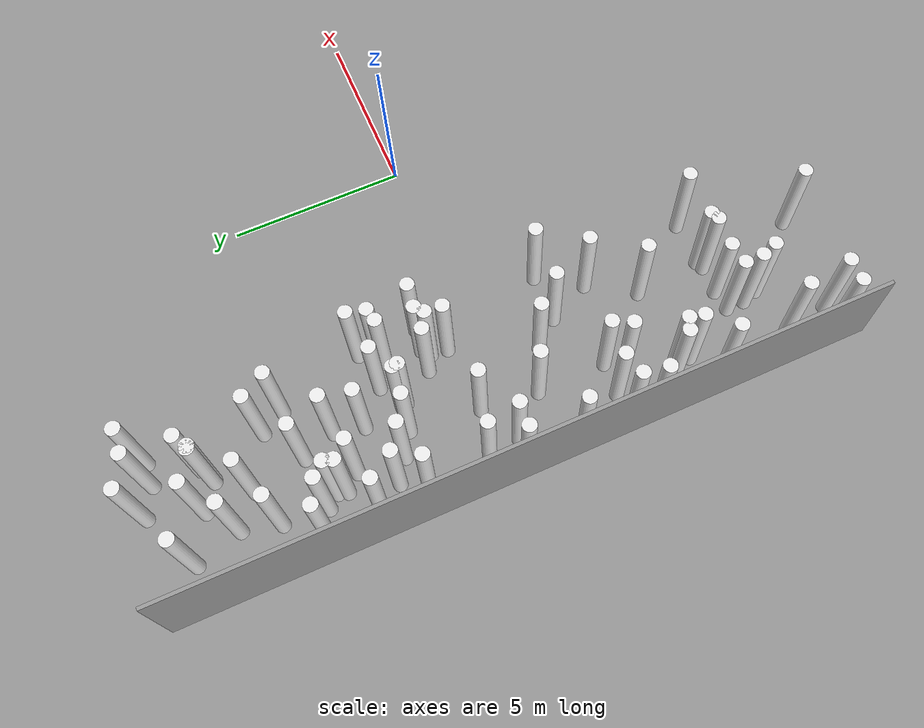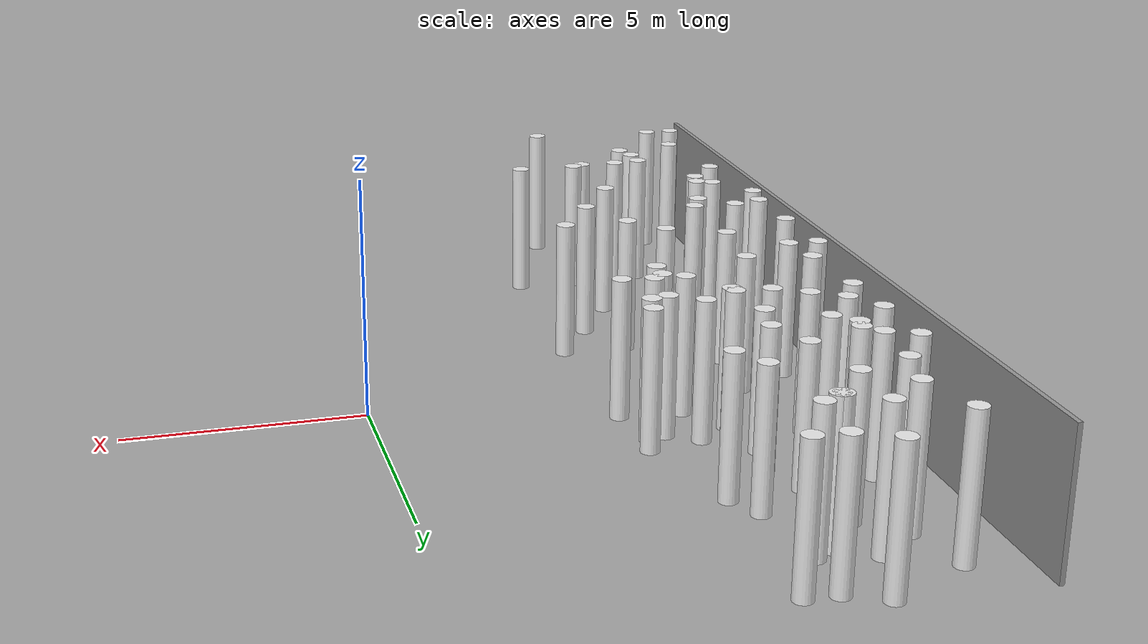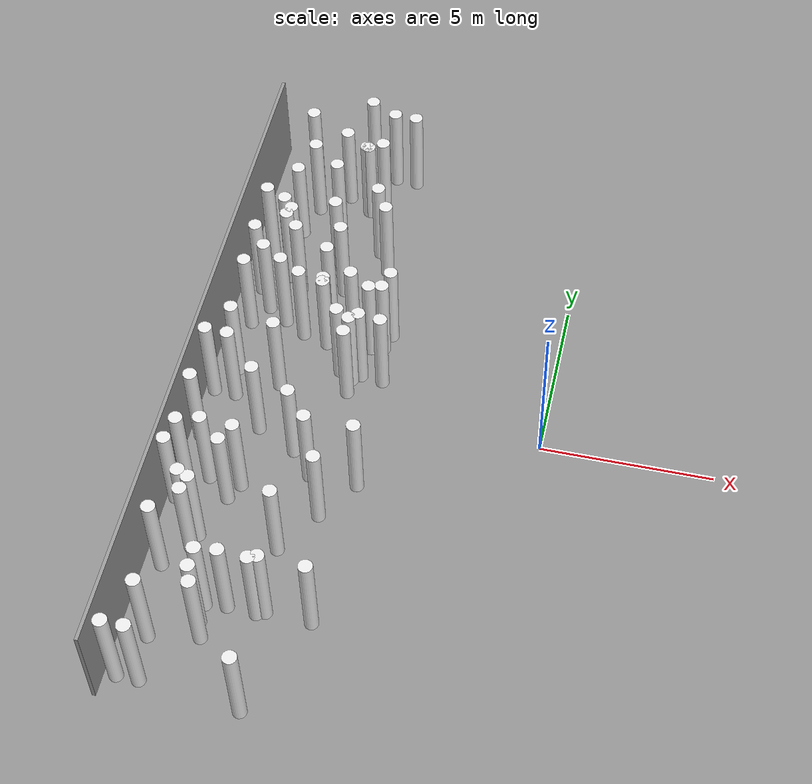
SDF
<sdf version="1.5">
 <world name="default">
  <include><uri>model://sun</uri></include>
  <model name="box_4">
   <pose>-10.05 -0.04999999999999982 1.5  0 0 0</pose>
   <static>true</static>
   <link name="link">
    <collision name="collision">
     <geometry><box><size>0.09999999999999964 20.1 3.0</size></box></geometry>
    </collision>
    <visual name="visual">
     <geometry><box><size>0.09999999999999964 20.1 3.0</size></box></geometry>
     <material>
      <script><name>Gazebo/Grey</name><uri>file://media/materials/scripts/gazebo.material</uri></script>
     </material>
    </visual>
   </link>
  </model>
  <model name="cylinder_2">
   <pose>-8.91809387741 3.40740717067 1.5  0 0 0</pose>
   <static>true</static>
   <link name="link">
    <collision name="collision">
     <geometry><cylinder><radius>0.2</radius><length>3.0</length></cylinder></geometry>
    </collision>
    <visual name="visual">
     <geometry><cylinder><radius>0.2</radius><length>3.0</length></cylinder></geometry>
     <material>
      <script><name>Gazebo/White</name><uri>file://media/materials/scripts/gazebo.material</uri></script>
     </material>
    </visual>
   </link>
  </model>
  <model name="cylinder_4">
   <pose>-8.85773805694 -5.24153846135 1.5  0 0 0</pose>
   <static>true</static>
   <link name="link">
    <collision name="collision">
     <geometry><cylinder><radius>0.2</radius><length>3.0</length></cylinder></geometry>
    </collision>
    <visual name="visual">
     <geometry><cylinder><radius>0.2</radius><length>3.0</length></cylinder></geometry>
     <material>
      <script><name>Gazebo/White</name><uri>file://media/materials/scripts/gazebo.material</uri></script>
     </material>
    </visual>
   </link>
  </model>
  <model name="cylinder_5">
   <pose>-6.40461813006 8.08408559015 1.5  0 0 0</pose>
   <static>true</static>
   <link name="link">
    <collision name="collision">
     <geometry><cylinder><radius>0.2</radius><length>3.0</length></cylinder></geometry>
    </collision>
    <visual name="visual">
     <geometry><cylinder><radius>0.2</radius><length>3.0</length></cylinder></geometry>
     <material>
      <script><name>Gazebo/White</name><uri>file://media/materials/scripts/gazebo.material</uri></script>
     </material>
    </visual>
   </link>
  </model>
  <model name="cylinder_7">
   <pose>-9.35590509319 4.09018197456 1.5  0 0 0</pose>
   <static>true</static>
   <link name="link">
    <collision name="collision">
     <geometry><cylinder><radius>0.2</radius><length>3.0</length></cylinder></geometry>
    </collision>
    <visual name="visual">
     <geometry><cylinder><radius>0.2</radius><length>3.0</length></cylinder></geometry>
     <material>
      <script><name>Gazebo/White</name><uri>file://media/materials/scripts/gazebo.material</uri></script>
     </material>
    </visual>
   </link>
  </model>
  <model name="cylinder_10">
   <pose>-6.18407992831 2.91278318849 1.5  0 0 0</pose>
   <static>true</static>
   <link name="link">
    <collision name="collision">
     <geometry><cylinder><radius>0.2</radius><length>3.0</length></cylinder></geometry>
    </collision>
    <visual name="visual">
     <geometry><cylinder><radius>0.2</radius><length>3.0</length></cylinder></geometry>
     <material>
      <script><name>Gazebo/White</name><uri>file://media/materials/scripts/gazebo.material</uri></script>
     </material>
    </visual>
   </link>
  </model>
  <model name="cylinder_12">
   <pose>-7.07911922613 3.68708130066 1.5  0 0 0</pose>
   <static>true</static>
   <link name="link">
    <collision name="collision">
     <geometry><cylinder><radius>0.2</radius><length>3.0</length></cylinder></geometry>
    </collision>
    <visual name="visual">
     <geometry><cylinder><radius>0.2</radius><length>3.0</length></cylinder></geometry>
     <material>
      <script><name>Gazebo/White</name><uri>file://media/materials/scripts/gazebo.material</uri></script>
     </material>
    </visual>
   </link>
  </model>
  <model name="cylinder_16">
   <pose>-8.48771588368 4.98800820012 1.5  0 0 0</pose>
   <static>true</static>
   <link name="link">
    <collision name="collision">
     <geometry><cylinder><radius>0.2</radius><length>3.0</length></cylinder></geometry>
    </collision>
    <visual name="visual">
     <geometry><cylinder><radius>0.2</radius><length>3.0</length></cylinder></geometry>
     <material>
      <script><name>Gazebo/White</name><uri>file://media/materials/scripts/gazebo.material</uri></script>
     </material>
    </visual>
   </link>
  </model>
  <model name="cylinder_17">
   <pose>-9.06560502916 0.0428111366953 1.5  0 0 0</pose>
   <static>true</static>
   <link name="link">
    <collision name="collision">
     <geometry><cylinder><radius>0.2</radius><length>3.0</length></cylinder></geometry>
    </collision>
    <visual name="visual">
     <geometry><cylinder><radius>0.2</radius><length>3.0</length></cylinder></geometry>
     <material>
      <script><name>Gazebo/White</name><uri>file://media/materials/scripts/gazebo.material</uri></script>
     </material>
    </visual>
   </link>
  </model>
  <model name="cylinder_21">
   <pose>-9.08391895157 -4.67856192585 1.5  0 0 0</pose>
   <static>true</static>
   <link name="link">
    <collision name="collision">
     <geometry><cylinder><radius>0.2</radius><length>3.0</length></cylinder></geometry>
    </collision>
    <visual name="visual">
     <geometry><cylinder><radius>0.2</radius><length>3.0</length></cylinder></geometry>
     <material>
      <script><name>Gazebo/White</name><uri>file://media/materials/scripts/gazebo.material</uri></script>
     </material>
    </visual>
   </link>
  </model>
  <model name="cylinder_23">
   <pose>-8.05006033049 -2.99132176691 1.5  0 0 0</pose>
   <static>true</static>
   <link name="link">
    <collision name="collision">
     <geometry><cylinder><radius>0.2</radius><length>3.0</length></cylinder></geometry>
    </collision>
    <visual name="visual">
     <geometry><cylinder><radius>0.2</radius><length>3.0</length></cylinder></geometry>
     <material>
      <script><name>Gazebo/White</name><uri>file://media/materials/scripts/gazebo.material</uri></script>
     </material>
    </visual>
   </link>
  </model>
  <model name="cylinder_30">
   <pose>-8.98854296439 -2.91839689633 1.5  0 0 0</pose>
   <static>true</static>
   <link name="link">
    <collision name="collision">
     <geometry><cylinder><radius>0.2</radius><length>3.0</length></cylinder></geometry>
    </collision>
    <visual name="visual">
     <geometry><cylinder><radius>0.2</radius><length>3.0</length></cylinder></geometry>
     <material>
      <script><name>Gazebo/White</name><uri>file://media/materials/scripts/gazebo.material</uri></script>
     </material>
    </visual>
   </link>
  </model>
  <model name="cylinder_37">
   <pose>-7.96819840306 -6.91413932885 1.5  0 0 0</pose>
   <static>true</static>
   <link name="link">
    <collision name="collision">
     <geometry><cylinder><radius>0.2</radius><length>3.0</length></cylinder></geometry>
    </collision>
    <visual name="visual">
     <geometry><cylinder><radius>0.2</radius><length>3.0</length></cylinder></geometry>
     <material>
      <script><name>Gazebo/White</name><uri>file://media/materials/scripts/gazebo.material</uri></script>
     </material>
    </visual>
   </link>
  </model>
  <model name="cylinder_43">
   <pose>-6.79873943102 7.83938631427 1.5  0 0 0</pose>
   <static>true</static>
   <link name="link">
    <collision name="collision">
     <geometry><cylinder><radius>0.2</radius><length>3.0</length></cylinder></geometry>
    </collision>
    <visual name="visual">
     <geometry><cylinder><radius>0.2</radius><length>3.0</length></cylinder></geometry>
     <material>
      <script><name>Gazebo/White</name><uri>file://media/materials/scripts/gazebo.material</uri></script>
     </material>
    </visual>
   </link>
  </model>
  <model name="cylinder_44">
   <pose>-8.29941449807 3.00940650877 1.5  0 0 0</pose>
   <static>true</static>
   <link name="link">
    <collision name="collision">
     <geometry><cylinder><radius>0.2</radius><length>3.0</length></cylinder></geometry>
    </collision>
    <visual name="visual">
     <geometry><cylinder><radius>0.2</radius><length>3.0</length></cylinder></geometry>
     <material>
      <script><name>Gazebo/White</name><uri>file://media/materials/scripts/gazebo.material</uri></script>
     </material>
    </visual>
   </link>
  </model>
  <model name="cylinder_45">
   <pose>-9.32123799414 2.73283957312 1.5  0 0 0</pose>
   <static>true</static>
   <link name="link">
    <collision name="collision">
     <geometry><cylinder><radius>0.2</radius><length>3.0</length></cylinder></geometry>
    </collision>
    <visual name="visual">
     <geometry><cylinder><radius>0.2</radius><length>3.0</length></cylinder></geometry>
     <material>
      <script><name>Gazebo/White</name><uri>file://media/materials/scripts/gazebo.material</uri></script>
     </material>
    </visual>
   </link>
  </model>
  <model name="cylinder_47">
   <pose>-9.66109366104 -1.57732321205 1.5  0 0 0</pose>
   <static>true</static>
   <link name="link">
    <collision name="collision">
     <geometry><cylinder><radius>0.2</radius><length>3.0</length></cylinder></geometry>
    </collision>
    <visual name="visual">
     <geometry><cylinder><radius>0.2</radius><length>3.0</length></cylinder></geometry>
     <material>
      <script><name>Gazebo/White</name><uri>file://media/materials/scripts/gazebo.material</uri></script>
     </material>
    </visual>
   </link>
  </model>
  <model name="cylinder_49">
   <pose>-6.8581710338 7.85588094173 1.5  0 0 0</pose>
   <static>true</static>
   <link name="link">
    <collision name="collision">
     <geometry><cylinder><radius>0.2</radius><length>3.0</length></cylinder></geometry>
    </collision>
    <visual name="visual">
     <geometry><cylinder><radius>0.2</radius><length>3.0</length></cylinder></geometry>
     <material>
      <script><name>Gazebo/White</name><uri>file://media/materials/scripts/gazebo.material</uri></script>
     </material>
    </visual>
   </link>
  </model>
  <model name="cylinder_50">
   <pose>-6.19443365025 -9.76611396982 1.5  0 0 0</pose>
   <static>true</static>
   <link name="link">
    <collision name="collision">
     <geometry><cylinder><radius>0.2</radius><length>3.0</length></cylinder></geometry>
    </collision>
    <visual name="visual">
     <geometry><cylinder><radius>0.2</radius><length>3.0</length></cylinder></geometry>
     <material>
      <script><name>Gazebo/White</name><uri>file://media/materials/scripts/gazebo.material</uri></script>
     </material>
    </visual>
   </link>
  </model>
  <model name="cylinder_56">
   <pose>-6.26087689021 1.49954999286 1.5  0 0 0</pose>
   <static>true</static>
   <link name="link">
    <collision name="collision">
     <geometry><cylinder><radius>0.2</radius><length>3.0</length></cylinder></geometry>
    </collision>
    <visual name="visual">
     <geometry><cylinder><radius>0.2</radius><length>3.0</length></cylinder></geometry>
     <material>
      <script><name>Gazebo/White</name><uri>file://media/materials/scripts/gazebo.material</uri></script>
     </material>
    </visual>
   </link>
  </model>
  <model name="cylinder_57">
   <pose>-5.61491477612 1.46301873385 1.5  0 0 0</pose>
   <static>true</static>
   <link name="link">
    <collision name="collision">
     <geometry><cylinder><radius>0.2</radius><length>3.0</length></cylinder></geometry>
    </collision>
    <visual name="visual">
     <geometry><cylinder><radius>0.2</radius><length>3.0</length></cylinder></geometry>
     <material>
      <script><name>Gazebo/White</name><uri>file://media/materials/scripts/gazebo.material</uri></script>
     </material>
    </visual>
   </link>
  </model>
  <model name="cylinder_63">
   <pose>-6.87695886852 4.52264266228 1.5  0 0 0</pose>
   <static>true</static>
   <link name="link">
    <collision name="collision">
     <geometry><cylinder><radius>0.2</radius><length>3.0</length></cylinder></geometry>
    </collision>
    <visual name="visual">
     <geometry><cylinder><radius>0.2</radius><length>3.0</length></cylinder></geometry>
     <material>
      <script><name>Gazebo/White</name><uri>file://media/materials/scripts/gazebo.material</uri></script>
     </material>
    </visual>
   </link>
  </model>
  <model name="cylinder_64">
   <pose>-7.25736357598 5.46162269004 1.5  0 0 0</pose>
   <static>true</static>
   <link name="link">
    <collision name="collision">
     <geometry><cylinder><radius>0.2</radius><length>3.0</length></cylinder></geometry>
    </collision>
    <visual name="visual">
     <geometry><cylinder><radius>0.2</radius><length>3.0</length></cylinder></geometry>
     <material>
      <script><name>Gazebo/White</name><uri>file://media/materials/scripts/gazebo.material</uri></script>
     </material>
    </visual>
   </link>
  </model>
  <model name="cylinder_70">
   <pose>-6.30739602169 9.37611433007 1.5  0 0 0</pose>
   <static>true</static>
   <link name="link">
    <collision name="collision">
     <geometry><cylinder><radius>0.2</radius><length>3.0</length></cylinder></geometry>
    </collision>
    <visual name="visual">
     <geometry><cylinder><radius>0.2</radius><length>3.0</length></cylinder></geometry>
     <material>
      <script><name>Gazebo/White</name><uri>file://media/materials/scripts/gazebo.material</uri></script>
     </material>
    </visual>
   </link>
  </model>
  <model name="cylinder_83">
   <pose>-9.19539128012 -8.15250630537 1.5  0 0 0</pose>
   <static>true</static>
   <link name="link">
    <collision name="collision">
     <geometry><cylinder><radius>0.2</radius><length>3.0</length></cylinder></geometry>
    </collision>
    <visual name="visual">
     <geometry><cylinder><radius>0.2</radius><length>3.0</length></cylinder></geometry>
     <material>
      <script><name>Gazebo/White</name><uri>file://media/materials/scripts/gazebo.material</uri></script>
     </material>
    </visual>
   </link>
  </model>
  <model name="cylinder_85">
   <pose>-5.01222941314 -6.86212247309 1.5  0 0 0</pose>
   <static>true</static>
   <link name="link">
    <collision name="collision">
     <geometry><cylinder><radius>0.2</radius><length>3.0</length></cylinder></geometry>
    </collision>
    <visual name="visual">
     <geometry><cylinder><radius>0.2</radius><length>3.0</length></cylinder></geometry>
     <material>
      <script><name>Gazebo/White</name><uri>file://media/materials/scripts/gazebo.material</uri></script>
     </material>
    </visual>
   </link>
  </model>
  <model name="cylinder_88">
   <pose>-5.84831882596 1.26511164725 1.5  0 0 0</pose>
   <static>true</static>
   <link name="link">
    <collision name="collision">
     <geometry><cylinder><radius>0.2</radius><length>3.0</length></cylinder></geometry>
    </collision>
    <visual name="visual">
     <geometry><cylinder><radius>0.2</radius><length>3.0</length></cylinder></geometry>
     <material>
      <script><name>Gazebo/White</name><uri>file://media/materials/scripts/gazebo.material</uri></script>
     </material>
    </visual>
   </link>
  </model>
  <model name="cylinder_89">
   <pose>-6.88361470292 -1.55944134841 1.5  0 0 0</pose>
   <static>true</static>
   <link name="link">
    <collision name="collision">
     <geometry><cylinder><radius>0.2</radius><length>3.0</length></cylinder></geometry>
    </collision>
    <visual name="visual">
     <geometry><cylinder><radius>0.2</radius><length>3.0</length></cylinder></geometry>
     <material>
      <script><name>Gazebo/White</name><uri>file://media/materials/scripts/gazebo.material</uri></script>
     </material>
    </visual>
   </link>
  </model>
  <model name="cylinder_90">
   <pose>-8.56850200641 4.72829096182 1.5  0 0 0</pose>
   <static>true</static>
   <link name="link">
    <collision name="collision">
     <geometry><cylinder><radius>0.2</radius><length>3.0</length></cylinder></geometry>
    </collision>
    <visual name="visual">
     <geometry><cylinder><radius>0.2</radius><length>3.0</length></cylinder></geometry>
     <material>
      <script><name>Gazebo/White</name><uri>file://media/materials/scripts/gazebo.material</uri></script>
     </material>
    </visual>
   </link>
  </model>
  <model name="cylinder_92">
   <pose>-6.24467097843 -2.28933484051 1.5  0 0 0</pose>
   <static>true</static>
   <link name="link">
    <collision name="collision">
     <geometry><cylinder><radius>0.2</radius><length>3.0</length></cylinder></geometry>
    </collision>
    <visual name="visual">
     <geometry><cylinder><radius>0.2</radius><length>3.0</length></cylinder></geometry>
     <material>
      <script><name>Gazebo/White</name><uri>file://media/materials/scripts/gazebo.material</uri></script>
     </material>
    </visual>
   </link>
  </model>
  <model name="cylinder_93">
   <pose>-7.66136563109 2.6277047593 1.5  0 0 0</pose>
   <static>true</static>
   <link name="link">
    <collision name="collision">
     <geometry><cylinder><radius>0.2</radius><length>3.0</length></cylinder></geometry>
    </collision>
    <visual name="visual">
     <geometry><cylinder><radius>0.2</radius><length>3.0</length></cylinder></geometry>
     <material>
      <script><name>Gazebo/White</name><uri>file://media/materials/scripts/gazebo.material</uri></script>
     </material>
    </visual>
   </link>
  </model>
  <model name="cylinder_98">
   <pose>-5.64959617735 9.34092397624 1.5  0 0 0</pose>
   <static>true</static>
   <link name="link">
    <collision name="collision">
     <geometry><cylinder><radius>0.2</radius><length>3.0</length></cylinder></geometry>
    </collision>
    <visual name="visual">
     <geometry><cylinder><radius>0.2</radius><length>3.0</length></cylinder></geometry>
     <material>
      <script><name>Gazebo/White</name><uri>file://media/materials/scripts/gazebo.material</uri></script>
     </material>
    </visual>
   </link>
  </model>
  <model name="cylinder_99">
   <pose>-9.62130049852 -3.07874597216 1.5  0 0 0</pose>
   <static>true</static>
   <link name="link">
    <collision name="collision">
     <geometry><cylinder><radius>0.2</radius><length>3.0</length></cylinder></geometry>
    </collision>
    <visual name="visual">
     <geometry><cylinder><radius>0.2</radius><length>3.0</length></cylinder></geometry>
     <material>
      <script><name>Gazebo/White</name><uri>file://media/materials/scripts/gazebo.material</uri></script>
     </material>
    </visual>
   </link>
  </model>
  <model name="cylinder_101">
   <pose>-8.75704578055 -4.83164121486 1.5  0 0 0</pose>
   <static>true</static>
   <link name="link">
    <collision name="collision">
     <geometry><cylinder><radius>0.2</radius><length>3.0</length></cylinder></geometry>
    </collision>
    <visual name="visual">
     <geometry><cylinder><radius>0.2</radius><length>3.0</length></cylinder></geometry>
     <material>
      <script><name>Gazebo/White</name><uri>file://media/materials/scripts/gazebo.material</uri></script>
     </material>
    </visual>
   </link>
  </model>
  <model name="cylinder_106">
   <pose>-4.84848072694 -2.33067005347 1.5  0 0 0</pose>
   <static>true</static>
   <link name="link">
    <collision name="collision">
     <geometry><cylinder><radius>0.2</radius><length>3.0</length></cylinder></geometry>
    </collision>
    <visual name="visual">
     <geometry><cylinder><radius>0.2</radius><length>3.0</length></cylinder></geometry>
     <material>
      <script><name>Gazebo/White</name><uri>file://media/materials/scripts/gazebo.material</uri></script>
     </material>
    </visual>
   </link>
  </model>
  <model name="cylinder_115">
   <pose>-6.30591541746 -6.81276768117 1.5  0 0 0</pose>
   <static>true</static>
   <link name="link">
    <collision name="collision">
     <geometry><cylinder><radius>0.2</radius><length>3.0</length></cylinder></geometry>
    </collision>
    <visual name="visual">
     <geometry><cylinder><radius>0.2</radius><length>3.0</length></cylinder></geometry>
     <material>
      <script><name>Gazebo/White</name><uri>file://media/materials/scripts/gazebo.material</uri></script>
     </material>
    </visual>
   </link>
  </model>
  <model name="cylinder_118">
   <pose>-8.68676826264 6.57944009823 1.5  0 0 0</pose>
   <static>true</static>
   <link name="link">
    <collision name="collision">
     <geometry><cylinder><radius>0.2</radius><length>3.0</length></cylinder></geometry>
    </collision>
    <visual name="visual">
     <geometry><cylinder><radius>0.2</radius><length>3.0</length></cylinder></geometry>
     <material>
      <script><name>Gazebo/White</name><uri>file://media/materials/scripts/gazebo.material</uri></script>
     </material>
    </visual>
   </link>
  </model>
  <model name="cylinder_124">
   <pose>-9.21730966688 0.966251184767 1.5  0 0 0</pose>
   <static>true</static>
   <link name="link">
    <collision name="collision">
     <geometry><cylinder><radius>0.2</radius><length>3.0</length></cylinder></geometry>
    </collision>
    <visual name="visual">
     <geometry><cylinder><radius>0.2</radius><length>3.0</length></cylinder></geometry>
     <material>
      <script><name>Gazebo/White</name><uri>file://media/materials/scripts/gazebo.material</uri></script>
     </material>
    </visual>
   </link>
  </model>
  <model name="cylinder_128">
   <pose>-9.74720519216 -3.77012033177 1.5  0 0 0</pose>
   <static>true</static>
   <link name="link">
    <collision name="collision">
     <geometry><cylinder><radius>0.2</radius><length>3.0</length></cylinder></geometry>
    </collision>
    <visual name="visual">
     <geometry><cylinder><radius>0.2</radius><length>3.0</length></cylinder></geometry>
     <material>
      <script><name>Gazebo/White</name><uri>file://media/materials/scripts/gazebo.material</uri></script>
     </material>
    </visual>
   </link>
  </model>
  <model name="cylinder_130">
   <pose>-7.88583673412 0.645371106276 1.5  0 0 0</pose>
   <static>true</static>
   <link name="link">
    <collision name="collision">
     <geometry><cylinder><radius>0.2</radius><length>3.0</length></cylinder></geometry>
    </collision>
    <visual name="visual">
     <geometry><cylinder><radius>0.2</radius><length>3.0</length></cylinder></geometry>
     <material>
      <script><name>Gazebo/White</name><uri>file://media/materials/scripts/gazebo.material</uri></script>
     </material>
    </visual>
   </link>
  </model>
  <model name="cylinder_136">
   <pose>-5.75200719353 5.56347758493 1.5  0 0 0</pose>
   <static>true</static>
   <link name="link">
    <collision name="collision">
     <geometry><cylinder><radius>0.2</radius><length>3.0</length></cylinder></geometry>
    </collision>
    <visual name="visual">
     <geometry><cylinder><radius>0.2</radius><length>3.0</length></cylinder></geometry>
     <material>
      <script><name>Gazebo/White</name><uri>file://media/materials/scripts/gazebo.material</uri></script>
     </material>
    </visual>
   </link>
  </model>
  <model name="cylinder_140">
   <pose>-6.50530988713 -4.82955098717 1.5  0 0 0</pose>
   <static>true</static>
   <link name="link">
    <collision name="collision">
     <geometry><cylinder><radius>0.2</radius><length>3.0</length></cylinder></geometry>
    </collision>
    <visual name="visual">
     <geometry><cylinder><radius>0.2</radius><length>3.0</length></cylinder></geometry>
     <material>
      <script><name>Gazebo/White</name><uri>file://media/materials/scripts/gazebo.material</uri></script>
     </material>
    </visual>
   </link>
  </model>
  <model name="cylinder_141">
   <pose>-7.56903861601 6.95764212477 1.5  0 0 0</pose>
   <static>true</static>
   <link name="link">
    <collision name="collision">
     <geometry><cylinder><radius>0.2</radius><length>3.0</length></cylinder></geometry>
    </collision>
    <visual name="visual">
     <geometry><cylinder><radius>0.2</radius><length>3.0</length></cylinder></geometry>
     <material>
      <script><name>Gazebo/White</name><uri>file://media/materials/scripts/gazebo.material</uri></script>
     </material>
    </visual>
   </link>
  </model>
  <model name="cylinder_144">
   <pose>-8.30747463702 -3.49697442451 1.5  0 0 0</pose>
   <static>true</static>
   <link name="link">
    <collision name="collision">
     <geometry><cylinder><radius>0.2</radius><length>3.0</length></cylinder></geometry>
    </collision>
    <visual name="visual">
     <geometry><cylinder><radius>0.2</radius><length>3.0</length></cylinder></geometry>
     <material>
      <script><name>Gazebo/White</name><uri>file://media/materials/scripts/gazebo.material</uri></script>
     </material>
    </visual>
   </link>
  </model>
  <model name="cylinder_147">
   <pose>-9.38640862729 5.60097943181 1.5  0 0 0</pose>
   <static>true</static>
   <link name="link">
    <collision name="collision">
     <geometry><cylinder><radius>0.2</radius><length>3.0</length></cylinder></geometry>
    </collision>
    <visual name="visual">
     <geometry><cylinder><radius>0.2</radius><length>3.0</length></cylinder></geometry>
     <material>
      <script><name>Gazebo/White</name><uri>file://media/materials/scripts/gazebo.material</uri></script>
     </material>
    </visual>
   </link>
  </model>
  <model name="cylinder_150">
   <pose>-7.56387933455 8.30650233499 1.5  0 0 0</pose>
   <static>true</static>
   <link name="link">
    <collision name="collision">
     <geometry><cylinder><radius>0.2</radius><length>3.0</length></cylinder></geometry>
    </collision>
    <visual name="visual">
     <geometry><cylinder><radius>0.2</radius><length>3.0</length></cylinder></geometry>
     <material>
      <script><name>Gazebo/White</name><uri>file://media/materials/scripts/gazebo.material</uri></script>
     </material>
    </visual>
   </link>
  </model>
  <model name="cylinder_151">
   <pose>-7.36213103537 -6.84631204951 1.5  0 0 0</pose>
   <static>true</static>
   <link name="link">
    <collision name="collision">
     <geometry><cylinder><radius>0.2</radius><length>3.0</length></cylinder></geometry>
    </collision>
    <visual name="visual">
     <geometry><cylinder><radius>0.2</radius><length>3.0</length></cylinder></geometry>
     <material>
      <script><name>Gazebo/White</name><uri>file://media/materials/scripts/gazebo.material</uri></script>
     </material>
    </visual>
   </link>
  </model>
  <model name="cylinder_152">
   <pose>-9.03265984084 -9.44675267308 1.5  0 0 0</pose>
   <static>true</static>
   <link name="link">
    <collision name="collision">
     <geometry><cylinder><radius>0.2</radius><length>3.0</length></cylinder></geometry>
    </collision>
    <visual name="visual">
     <geometry><cylinder><radius>0.2</radius><length>3.0</length></cylinder></geometry>
     <material>
      <script><name>Gazebo/White</name><uri>file://media/materials/scripts/gazebo.material</uri></script>
     </material>
    </visual>
   </link>
  </model>
  <model name="cylinder_153">
   <pose>-8.78386003178 5.32911011673 1.5  0 0 0</pose>
   <static>true</static>
   <link name="link">
    <collision name="collision">
     <geometry><cylinder><radius>0.2</radius><length>3.0</length></cylinder></geometry>
    </collision>
    <visual name="visual">
     <geometry><cylinder><radius>0.2</radius><length>3.0</length></cylinder></geometry>
     <material>
      <script><name>Gazebo/White</name><uri>file://media/materials/scripts/gazebo.material</uri></script>
     </material>
    </visual>
   </link>
  </model>
  <model name="cylinder_154">
   <pose>-8.79438481397 8.92707671593 1.5  0 0 0</pose>
   <static>true</static>
   <link name="link">
    <collision name="collision">
     <geometry><cylinder><radius>0.2</radius><length>3.0</length></cylinder></geometry>
    </collision>
    <visual name="visual">
     <geometry><cylinder><radius>0.2</radius><length>3.0</length></cylinder></geometry>
     <material>
      <script><name>Gazebo/White</name><uri>file://media/materials/scripts/gazebo.material</uri></script>
     </material>
    </visual>
   </link>
  </model>
  <model name="cylinder_155">
   <pose>-7.96686356279 -7.4519321962 1.5  0 0 0</pose>
   <static>true</static>
   <link name="link">
    <collision name="collision">
     <geometry><cylinder><radius>0.2</radius><length>3.0</length></cylinder></geometry>
    </collision>
    <visual name="visual">
     <geometry><cylinder><radius>0.2</radius><length>3.0</length></cylinder></geometry>
     <material>
      <script><name>Gazebo/White</name><uri>file://media/materials/scripts/gazebo.material</uri></script>
     </material>
    </visual>
   </link>
  </model>
  <model name="cylinder_156">
   <pose>-6.89309808199 2.41612934973 1.5  0 0 0</pose>
   <static>true</static>
   <link name="link">
    <collision name="collision">
     <geometry><cylinder><radius>0.2</radius><length>3.0</length></cylinder></geometry>
    </collision>
    <visual name="visual">
     <geometry><cylinder><radius>0.2</radius><length>3.0</length></cylinder></geometry>
     <material>
      <script><name>Gazebo/White</name><uri>file://media/materials/scripts/gazebo.material</uri></script>
     </material>
    </visual>
   </link>
  </model>
  <model name="cylinder_162">
   <pose>-5.55637744978 2.50132029332 1.5  0 0 0</pose>
   <static>true</static>
   <link name="link">
    <collision name="collision">
     <geometry><cylinder><radius>0.2</radius><length>3.0</length></cylinder></geometry>
    </collision>
    <visual name="visual">
     <geometry><cylinder><radius>0.2</radius><length>3.0</length></cylinder></geometry>
     <material>
      <script><name>Gazebo/White</name><uri>file://media/materials/scripts/gazebo.material</uri></script>
     </material>
    </visual>
   </link>
  </model>
  <model name="cylinder_163">
   <pose>-9.48834645718 -5.95535439822 1.5  0 0 0</pose>
   <static>true</static>
   <link name="link">
    <collision name="collision">
     <geometry><cylinder><radius>0.2</radius><length>3.0</length></cylinder></geometry>
    </collision>
    <visual name="visual">
     <geometry><cylinder><radius>0.2</radius><length>3.0</length></cylinder></geometry>
     <material>
      <script><name>Gazebo/White</name><uri>file://media/materials/scripts/gazebo.material</uri></script>
     </material>
    </visual>
   </link>
  </model>
  <model name="cylinder_164">
   <pose>-5.88647835643 0.778166521756 1.5  0 0 0</pose>
   <static>true</static>
   <link name="link">
    <collision name="collision">
     <geometry><cylinder><radius>0.2</radius><length>3.0</length></cylinder></geometry>
    </collision>
    <visual name="visual">
     <geometry><cylinder><radius>0.2</radius><length>3.0</length></cylinder></geometry>
     <material>
      <script><name>Gazebo/White</name><uri>file://media/materials/scripts/gazebo.material</uri></script>
     </material>
    </visual>
   </link>
  </model>
  <model name="cylinder_166">
   <pose>-6.91691008411 2.56093986468 1.5  0 0 0</pose>
   <static>true</static>
   <link name="link">
    <collision name="collision">
     <geometry><cylinder><radius>0.2</radius><length>3.0</length></cylinder></geometry>
    </collision>
    <visual name="visual">
     <geometry><cylinder><radius>0.2</radius><length>3.0</length></cylinder></geometry>
     <material>
      <script><name>Gazebo/White</name><uri>file://media/materials/scripts/gazebo.material</uri></script>
     </material>
    </visual>
   </link>
  </model>
  <model name="cylinder_167">
   <pose>-4.95948834717 1.37481247889 1.5  0 0 0</pose>
   <static>true</static>
   <link name="link">
    <collision name="collision">
     <geometry><cylinder><radius>0.2</radius><length>3.0</length></cylinder></geometry>
    </collision>
    <visual name="visual">
     <geometry><cylinder><radius>0.2</radius><length>3.0</length></cylinder></geometry>
     <material>
      <script><name>Gazebo/White</name><uri>file://media/materials/scripts/gazebo.material</uri></script>
     </material>
    </visual>
   </link>
  </model>
  <model name="cylinder_172">
   <pose>-6.53565369272 -6.90513138643 1.5  0 0 0</pose>
   <static>true</static>
   <link name="link">
    <collision name="collision">
     <geometry><cylinder><radius>0.2</radius><length>3.0</length></cylinder></geometry>
    </collision>
    <visual name="visual">
     <geometry><cylinder><radius>0.2</radius><length>3.0</length></cylinder></geometry>
     <material>
      <script><name>Gazebo/White</name><uri>file://media/materials/scripts/gazebo.material</uri></script>
     </material>
    </visual>
   </link>
  </model>
  <model name="cylinder_173">
   <pose>-5.66190285403 -3.53307028621 1.5  0 0 0</pose>
   <static>true</static>
   <link name="link">
    <collision name="collision">
     <geometry><cylinder><radius>0.2</radius><length>3.0</length></cylinder></geometry>
    </collision>
    <visual name="visual">
     <geometry><cylinder><radius>0.2</radius><length>3.0</length></cylinder></geometry>
     <material>
      <script><name>Gazebo/White</name><uri>file://media/materials/scripts/gazebo.material</uri></script>
     </material>
    </visual>
   </link>
  </model>
  <model name="cylinder_177">
   <pose>-9.65515692106 -9.43087494864 1.5  0 0 0</pose>
   <static>true</static>
   <link name="link">
    <collision name="collision">
     <geometry><cylinder><radius>0.2</radius><length>3.0</length></cylinder></geometry>
    </collision>
    <visual name="visual">
     <geometry><cylinder><radius>0.2</radius><length>3.0</length></cylinder></geometry>
     <material>
      <script><name>Gazebo/White</name><uri>file://media/materials/scripts/gazebo.material</uri></script>
     </material>
    </visual>
   </link>
  </model>
  <model name="cylinder_178">
   <pose>-9.71576271799 0.0796699278103 1.5  0 0 0</pose>
   <static>true</static>
   <link name="link">
    <collision name="collision">
     <geometry><cylinder><radius>0.2</radius><length>3.0</length></cylinder></geometry>
    </collision>
    <visual name="visual">
     <geometry><cylinder><radius>0.2</radius><length>3.0</length></cylinder></geometry>
     <material>
      <script><name>Gazebo/White</name><uri>file://media/materials/scripts/gazebo.material</uri></script>
     </material>
    </visual>
   </link>
  </model>
  <model name="cylinder_183">
   <pose>-7.09729185415 9.76429750828 1.5  0 0 0</pose>
   <static>true</static>
   <link name="link">
    <collision name="collision">
     <geometry><cylinder><radius>0.2</radius><length>3.0</length></cylinder></geometry>
    </collision>
    <visual name="visual">
     <geometry><cylinder><radius>0.2</radius><length>3.0</length></cylinder></geometry>
     <material>
      <script><name>Gazebo/White</name><uri>file://media/materials/scripts/gazebo.material</uri></script>
     </material>
    </visual>
   </link>
  </model>
  <model name="cylinder_187">
   <pose>-8.40293991519 7.6326532875 1.5  0 0 0</pose>
   <static>true</static>
   <link name="link">
    <collision name="collision">
     <geometry><cylinder><radius>0.2</radius><length>3.0</length></cylinder></geometry>
    </collision>
    <visual name="visual">
     <geometry><cylinder><radius>0.2</radius><length>3.0</length></cylinder></geometry>
     <material>
      <script><name>Gazebo/White</name><uri>file://media/materials/scripts/gazebo.material</uri></script>
     </material>
    </visual>
   </link>
  </model>
  <model name="cylinder_188">
   <pose>-8.17844870504 4.31536528089 1.5  0 0 0</pose>
   <static>true</static>
   <link name="link">
    <collision name="collision">
     <geometry><cylinder><radius>0.2</radius><length>3.0</length></cylinder></geometry>
    </collision>
    <visual name="visual">
     <geometry><cylinder><radius>0.2</radius><length>3.0</length></cylinder></geometry>
     <material>
      <script><name>Gazebo/White</name><uri>file://media/materials/scripts/gazebo.material</uri></script>
     </material>
    </visual>
   </link>
  </model>
  <model name="cylinder_189">
   <pose>-5.18818057677 2.58796777134 1.5  0 0 0</pose>
   <static>true</static>
   <link name="link">
    <collision name="collision">
     <geometry><cylinder><radius>0.2</radius><length>3.0</length></cylinder></geometry>
    </collision>
    <visual name="visual">
     <geometry><cylinder><radius>0.2</radius><length>3.0</length></cylinder></geometry>
     <material>
      <script><name>Gazebo/White</name><uri>file://media/materials/scripts/gazebo.material</uri></script>
     </material>
    </visual>
   </link>
  </model>
  <model name="cylinder_192">
   <pose>-6.130928797 6.24120092072 1.5  0 0 0</pose>
   <static>true</static>
   <link name="link">
    <collision name="collision">
     <geometry><cylinder><radius>0.2</radius><length>3.0</length></cylinder></geometry>
    </collision>
    <visual name="visual">
     <geometry><cylinder><radius>0.2</radius><length>3.0</length></cylinder></geometry>
     <material>
      <script><name>Gazebo/White</name><uri>file://media/materials/scripts/gazebo.material</uri></script>
     </material>
    </visual>
   </link>
  </model>
  <model name="cylinder_193">
   <pose>-7.80968640548 -7.90294033719 1.5  0 0 0</pose>
   <static>true</static>
   <link name="link">
    <collision name="collision">
     <geometry><cylinder><radius>0.2</radius><length>3.0</length></cylinder></geometry>
    </collision>
    <visual name="visual">
     <geometry><cylinder><radius>0.2</radius><length>3.0</length></cylinder></geometry>
     <material>
      <script><name>Gazebo/White</name><uri>file://media/materials/scripts/gazebo.material</uri></script>
     </material>
    </visual>
   </link>
  </model>
  <model name="cylinder_194">
   <pose>-8.06705207342 -0.98631464338 1.5  0 0 0</pose>
   <static>true</static>
   <link name="link">
    <collision name="collision">
     <geometry><cylinder><radius>0.2</radius><length>3.0</length></cylinder></geometry>
    </collision>
    <visual name="visual">
     <geometry><cylinder><radius>0.2</radius><length>3.0</length></cylinder></geometry>
     <material>
      <script><name>Gazebo/White</name><uri>file://media/materials/scripts/gazebo.material</uri></script>
     </material>
    </visual>
   </link>
  </model>
  <model name="cylinder_197">
   <pose>-5.04633534187 3.11146635827 1.5  0 0 0</pose>
   <static>true</static>
   <link name="link">
    <collision name="collision">
     <geometry><cylinder><radius>0.2</radius><length>3.0</length></cylinder></geometry>
    </collision>
    <visual name="visual">
     <geometry><cylinder><radius>0.2</radius><length>3.0</length></cylinder></geometry>
     <material>
      <script><name>Gazebo/White</name><uri>file://media/materials/scripts/gazebo.material</uri></script>
     </material>
    </visual>
   </link>
  </model>
 </world>
</sdf>
